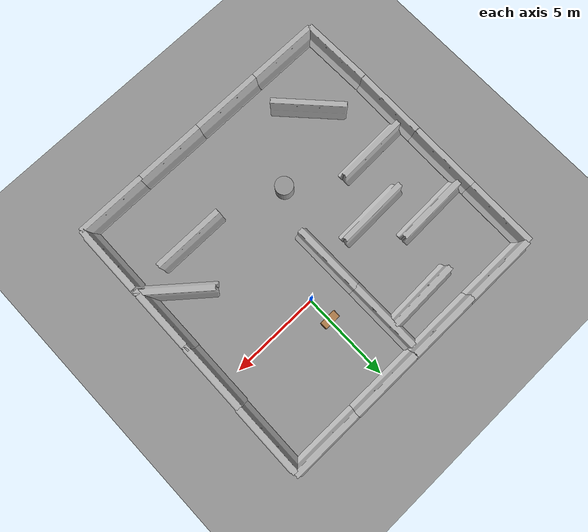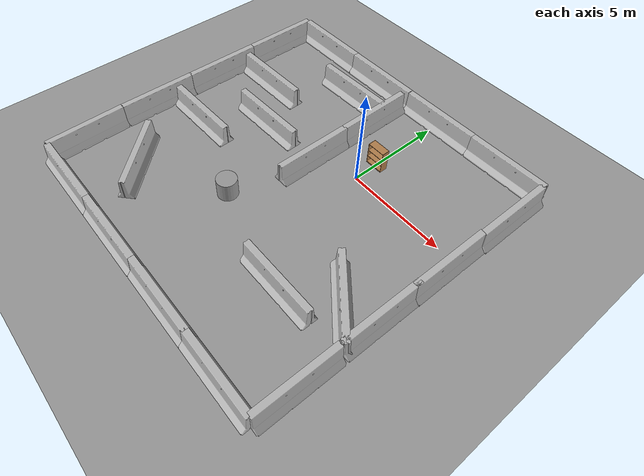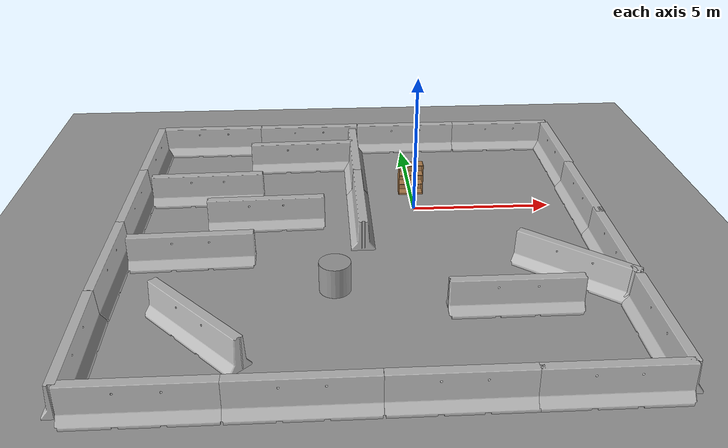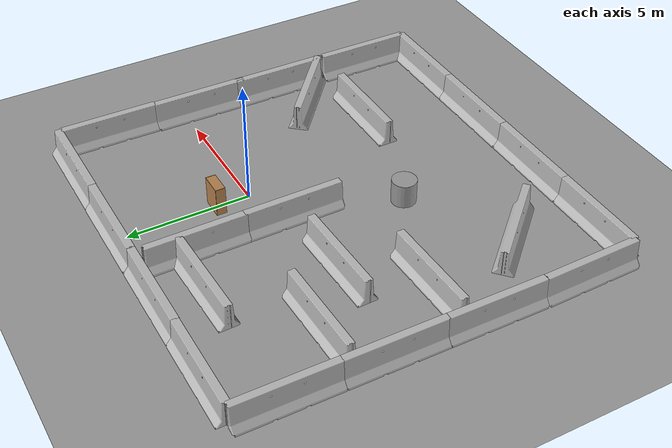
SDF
<sdf version="1.6">
 <world name="default">
  <light name="sun" type="directional">
   <pose>0 0 10 0 -0 0</pose>
   <diffuse>0.8 0.8 0.8 1</diffuse>
   <specular>0.2 0.2 0.2 1</specular>
   <attenuation>
    <range>1000</range>
    <constant>0.9</constant>
    <linear>0.01</linear>
    <quadratic>0.001</quadratic>
   </attenuation>
   <direction>0.5 0.1 -0.9</direction>
  </light>
  <scene><ambient>0.4 0.4 0.4 1</ambient><background>0.7 0.7 0.7 1</background><shadows>1</shadows></scene>
  <physics name="default_physics" default="0" type="ode">
   <max_step_size>0.01</max_step_size>
   <real_time_factor>1</real_time_factor>
   <real_time_update_rate>100</real_time_update_rate>
  </physics>
  <model name="bookshelf">
   <static>1</static>
   <link name="link">
    <inertial><mass>1</mass></inertial>
    <collision name="back">
     <pose>0 0.005 0.6 0 -0 0</pose>
     <geometry><box><size>0.9 0.01 1.2</size></box></geometry>
    </collision>
    <visual name="visual1">
     <pose>0 0.005 0.6 0 -0 0</pose>
     <geometry><box><size>0.9 0.01 1.2</size></box></geometry>
     <material>
      <script><uri>file://media/materials/scripts/gazebo.material</uri><name>Gazebo/Wood</name></script>
     </material>
    </visual>
    <collision name="left_side">
     <pose>0.45 -0.195 0.6 0 -0 0</pose>
     <geometry><box><size>0.02 0.4 1.2</size></box></geometry>
    </collision>
    <visual name="visual2">
     <pose>0.45 -0.195 0.6 0 -0 0</pose>
     <geometry><box><size>0.02 0.4 1.2</size></box></geometry>
     <material>
      <script><uri>file://media/materials/scripts/gazebo.material</uri><name>Gazebo/Wood</name></script>
     </material>
    </visual>
    <collision name="right_side">
     <pose>-0.45 -0.195 0.6 0 -0 0</pose>
     <geometry><box><size>0.02 0.4 1.2</size></box></geometry>
    </collision>
    <visual name="visual3">
     <pose>-0.45 -0.195 0.6 0 -0 0</pose>
     <geometry><box><size>0.02 0.4 1.2</size></box></geometry>
     <material>
      <script><uri>file://media/materials/scripts/gazebo.material</uri><name>Gazebo/Wood</name></script>
     </material>
    </visual>
    <collision name="bottom">
     <pose>0 -0.195 0.03 0 -0 0</pose>
     <geometry><box><size>0.88 0.4 0.06</size></box></geometry>
    </collision>
    <visual name="visual4">
     <pose>0 -0.195 0.03 0 -0 0</pose>
     <geometry><box><size>0.88 0.4 0.06</size></box></geometry>
     <material>
      <script><uri>file://media/materials/scripts/gazebo.material</uri><name>Gazebo/Wood</name></script>
     </material>
    </visual>
    <collision name="top">
     <pose>0 -0.195 1.19 0 -0 0</pose>
     <geometry><box><size>0.88 0.4 0.02</size></box></geometry>
    </collision>
    <visual name="visual5">
     <pose>0 -0.195 1.19 0 -0 0</pose>
     <geometry><box><size>0.88 0.4 0.02</size></box></geometry>
     <material>
      <script><uri>file://media/materials/scripts/gazebo.material</uri><name>Gazebo/Wood</name></script>
     </material>
    </visual>
    <collision name="low_shelf">
     <pose>0 -0.195 0.43 0 -0 0</pose>
     <geometry><box><size>0.88 0.4 0.02</size></box></geometry>
    </collision>
    <visual name="visual6">
     <pose>0 -0.195 0.43 0 -0 0</pose>
     <geometry><box><size>0.88 0.4 0.02</size></box></geometry>
     <material>
      <script><uri>file://media/materials/scripts/gazebo.material</uri><name>Gazebo/Wood</name></script>
     </material>
    </visual>
    <collision name="high_shelf">
     <pose>0 -0.195 0.8 0 -0 0</pose>
     <geometry><box><size>0.88 0.4 0.02</size></box></geometry>
    </collision>
    <visual name="visual7">
     <pose>0 -0.195 0.8 0 -0 0</pose>
     <geometry><box><size>0.88 0.4 0.02</size></box></geometry>
     <material>
      <script><uri>file://media/materials/scripts/gazebo.material</uri><name>Gazebo/Wood</name></script>
     </material>
    </visual>
    <velocity_decay><linear>0</linear><angular>0</angular></velocity_decay>
   </link>
   <pose>0 1.53026 0 0 -0 0</pose>
  </model>
  <model name="jersey_barrier">
   <static>1</static>
   <link name="link">
    <visual name="visual">
     <geometry>
      <mesh><uri>model://jersey_barrier/meshes/jersey_barrier.dae</uri><scale>1 1 1</scale></mesh>
     </geometry>
    </visual>
    <collision name="upright">
     <pose>0 0 0.5715 0 -0 0</pose>
     <geometry><box><size>4.06542 0.3063 1.143</size></box></geometry>
    </collision>
    <collision name="base">
     <pose>0 0 0.032258 0 -0 0</pose>
     <geometry><box><size>4.06542 0.8107 0.064516</size></box></geometry>
    </collision>
    <collision name="base2">
     <pose>0 0 0.1 0 -0 0</pose>
     <geometry><box><size>4.06542 0.65 0.1</size></box></geometry>
    </collision>
    <collision name="base3">
     <pose>0 0 0.2 0 -0 0</pose>
     <geometry><box><size>4.06542 0.5 0.1</size></box></geometry>
    </collision>
    <collision name="left-angle">
     <pose>0 -0.224 0.2401 0.9 -0 0</pose>
     <geometry><box><size>4.06542 0.5 0.064516</size></box></geometry>
    </collision>
    <collision name="right-angle">
     <pose>0 0.224 0.2401 -0.9 0 0</pose>
     <geometry><box><size>4.06542 0.5 0.064516</size></box></geometry>
    </collision>
    <velocity_decay><linear>0</linear><angular>0</angular></velocity_decay>
   </link>
   <pose>-5.32831 -1.03438 0 0 -0 0.025873</pose>
  </model>
  <model name="ground_plane_0">
   <static>1</static>
   <link name="link">
    <collision name="collision">
     <geometry><plane><normal>0 0 1</normal><size>100 100</size></plane></geometry>
     <surface><friction><ode><mu>100</mu><mu2>50</mu2></ode></friction></surface>
    </collision>
    <visual name="visual">
     <cast_shadows>0</cast_shadows>
     <geometry><plane><normal>0 0 1</normal><size>100 100</size></plane></geometry>
     <material>
      <script><uri>file://media/materials/scripts/gazebo.material</uri><name>Gazebo/Grey</name></script>
     </material>
    </visual>
    <velocity_decay><linear>0</linear><angular>0</angular></velocity_decay>
   </link>
   <pose>0.497681 0 0 0 -0 0</pose>
  </model>
  <model name="unit_cylinder_1">
   <pose>-3.03847 -5.14825 0.49912 0 0 -1e-06</pose>
   <link name="link">
    <inertial>
     <mass>1</mass>
     <inertia><ixx>1</ixx><ixy>0</ixy><ixz>0</ixz><iyy>1</iyy><iyz>0</iyz><izz>1</izz></inertia>
    </inertial>
    <collision name="collision">
     <geometry><cylinder><radius>0.5</radius><length>1</length></cylinder></geometry>
    </collision>
    <visual name="visual">
     <geometry><cylinder><radius>0.5</radius><length>1</length></cylinder></geometry>
     <material>
      <script><uri>file://media/materials/scripts/gazebo.material</uri><name>Gazebo/Grey</name></script>
     </material>
    </visual>
    <velocity_decay><linear>0</linear><angular>0</angular></velocity_decay>
   </link>
   <static>0</static>
  </model>
  <gravity>0 0 -9.8</gravity>
  <magnetic_field>6e-06 2.3e-05 -4.2e-05</magnetic_field>
  <atmosphere type="adiabatic"/>
  <spherical_coordinates>
   <surface_model>EARTH_WGS84</surface_model>
   <latitude_deg>0</latitude_deg>
   <longitude_deg>0</longitude_deg>
   <elevation>0</elevation>
   <heading_deg>0</heading_deg>
  </spherical_coordinates>
  <model name="jersey_barrier_0">
   <static>1</static>
   <link name="link">
    <visual name="visual">
     <geometry>
      <mesh><uri>model://jersey_barrier/meshes/jersey_barrier.dae</uri><scale>1 1 1</scale></mesh>
     </geometry>
    </visual>
    <collision name="upright">
     <pose>0 0 0.5715 0 -0 0</pose>
     <geometry><box><size>4.06542 0.3063 1.143</size></box></geometry>
    </collision>
    <collision name="base">
     <pose>0 0 0.032258 0 -0 0</pose>
     <geometry><box><size>4.06542 0.8107 0.064516</size></box></geometry>
    </collision>
    <collision name="base2">
     <pose>0 0 0.1 0 -0 0</pose>
     <geometry><box><size>4.06542 0.65 0.1</size></box></geometry>
    </collision>
    <collision name="base3">
     <pose>0 0 0.2 0 -0 0</pose>
     <geometry><box><size>4.06542 0.5 0.1</size></box></geometry>
    </collision>
    <collision name="left-angle">
     <pose>0 -0.224 0.2401 0.9 -0 0</pose>
     <geometry><box><size>4.06542 0.5 0.064516</size></box></geometry>
    </collision>
    <collision name="right-angle">
     <pose>0 0.224 0.2401 -0.9 0 0</pose>
     <geometry><box><size>4.06542 0.5 0.064516</size></box></geometry>
    </collision>
   </link>
   <pose>0.044913 -10.4917 0 0 -0 0</pose>
  </model>
  <model name="jersey_barrier_1">
   <static>1</static>
   <link name="link">
    <visual name="visual">
     <geometry>
      <mesh><uri>model://jersey_barrier/meshes/jersey_barrier.dae</uri><scale>1 1 1</scale></mesh>
     </geometry>
    </visual>
    <collision name="upright">
     <pose>0 0 0.5715 0 -0 0</pose>
     <geometry><box><size>4.06542 0.3063 1.143</size></box></geometry>
    </collision>
    <collision name="base">
     <pose>0 0 0.032258 0 -0 0</pose>
     <geometry><box><size>4.06542 0.8107 0.064516</size></box></geometry>
    </collision>
    <collision name="base2">
     <pose>0 0 0.1 0 -0 0</pose>
     <geometry><box><size>4.06542 0.65 0.1</size></box></geometry>
    </collision>
    <collision name="base3">
     <pose>0 0 0.2 0 -0 0</pose>
     <geometry><box><size>4.06542 0.5 0.1</size></box></geometry>
    </collision>
    <collision name="left-angle">
     <pose>0 -0.224 0.2401 0.9 -0 0</pose>
     <geometry><box><size>4.06542 0.5 0.064516</size></box></geometry>
    </collision>
    <collision name="right-angle">
     <pose>0 0.224 0.2401 -0.9 0 0</pose>
     <geometry><box><size>4.06542 0.5 0.064516</size></box></geometry>
    </collision>
   </link>
   <pose>3.93437 -10.4926 0 0 -0 0</pose>
  </model>
  <model name="jersey_barrier_1_clone_0">
   <static>1</static>
   <link name="link">
    <visual name="visual">
     <geometry>
      <mesh><uri>model://jersey_barrier/meshes/jersey_barrier.dae</uri><scale>1 1 1</scale></mesh>
     </geometry>
    </visual>
    <collision name="upright">
     <pose>0 0 0.5715 0 -0 0</pose>
     <geometry><box><size>4.06542 0.3063 1.143</size></box></geometry>
    </collision>
    <collision name="base">
     <pose>0 0 0.032258 0 -0 0</pose>
     <geometry><box><size>4.06542 0.8107 0.064516</size></box></geometry>
    </collision>
    <collision name="base2">
     <pose>0 0 0.1 0 -0 0</pose>
     <geometry><box><size>4.06542 0.65 0.1</size></box></geometry>
    </collision>
    <collision name="base3">
     <pose>0 0 0.2 0 -0 0</pose>
     <geometry><box><size>4.06542 0.5 0.1</size></box></geometry>
    </collision>
    <collision name="left-angle">
     <pose>0 -0.224 0.2401 0.9 -0 0</pose>
     <geometry><box><size>4.06542 0.5 0.064516</size></box></geometry>
    </collision>
    <collision name="right-angle">
     <pose>0 0.224 0.2401 -0.9 0 0</pose>
     <geometry><box><size>4.06542 0.5 0.064516</size></box></geometry>
    </collision>
   </link>
   <pose>-3.96775 -10.4974 0 0 -0 0</pose>
  </model>
  <model name="jersey_barrier_1_clone_1">
   <static>1</static>
   <link name="link">
    <visual name="visual">
     <geometry>
      <mesh><uri>model://jersey_barrier/meshes/jersey_barrier.dae</uri><scale>1 1 1</scale></mesh>
     </geometry>
    </visual>
    <collision name="upright">
     <pose>0 0 0.5715 0 -0 0</pose>
     <geometry><box><size>4.06542 0.3063 1.143</size></box></geometry>
    </collision>
    <collision name="base">
     <pose>0 0 0.032258 0 -0 0</pose>
     <geometry><box><size>4.06542 0.8107 0.064516</size></box></geometry>
    </collision>
    <collision name="base2">
     <pose>0 0 0.1 0 -0 0</pose>
     <geometry><box><size>4.06542 0.65 0.1</size></box></geometry>
    </collision>
    <collision name="base3">
     <pose>0 0 0.2 0 -0 0</pose>
     <geometry><box><size>4.06542 0.5 0.1</size></box></geometry>
    </collision>
    <collision name="left-angle">
     <pose>0 -0.224 0.2401 0.9 -0 0</pose>
     <geometry><box><size>4.06542 0.5 0.064516</size></box></geometry>
    </collision>
    <collision name="right-angle">
     <pose>0 0.224 0.2401 -0.9 0 0</pose>
     <geometry><box><size>4.06542 0.5 0.064516</size></box></geometry>
    </collision>
   </link>
   <pose>-7.97176 -10.4956 0 0 -0 0</pose>
  </model>
  <model name="jersey_barrier_1_clone_2">
   <static>1</static>
   <link name="link">
    <visual name="visual">
     <geometry>
      <mesh><uri>model://jersey_barrier/meshes/jersey_barrier.dae</uri><scale>1 1 1</scale></mesh>
     </geometry>
    </visual>
    <collision name="upright">
     <pose>0 0 0.5715 0 -0 0</pose>
     <geometry><box><size>4.06542 0.3063 1.143</size></box></geometry>
    </collision>
    <collision name="base">
     <pose>0 0 0.032258 0 -0 0</pose>
     <geometry><box><size>4.06542 0.8107 0.064516</size></box></geometry>
    </collision>
    <collision name="base2">
     <pose>0 0 0.1 0 -0 0</pose>
     <geometry><box><size>4.06542 0.65 0.1</size></box></geometry>
    </collision>
    <collision name="base3">
     <pose>0 0 0.2 0 -0 0</pose>
     <geometry><box><size>4.06542 0.5 0.1</size></box></geometry>
    </collision>
    <collision name="left-angle">
     <pose>0 -0.224 0.2401 0.9 -0 0</pose>
     <geometry><box><size>4.06542 0.5 0.064516</size></box></geometry>
    </collision>
    <collision name="right-angle">
     <pose>0 0.224 0.2401 -0.9 0 0</pose>
     <geometry><box><size>4.06542 0.5 0.064516</size></box></geometry>
    </collision>
   </link>
   <pose>-10.0738 -8.515 0 0 0 -1.55445</pose>
  </model>
  <model name="jersey_barrier_1_clone_2_clone">
   <static>1</static>
   <link name="link">
    <visual name="visual">
     <geometry>
      <mesh><uri>model://jersey_barrier/meshes/jersey_barrier.dae</uri><scale>1 1 1</scale></mesh>
     </geometry>
    </visual>
    <collision name="upright">
     <pose>0 0 0.5715 0 -0 0</pose>
     <geometry><box><size>4.06542 0.3063 1.143</size></box></geometry>
    </collision>
    <collision name="base">
     <pose>0 0 0.032258 0 -0 0</pose>
     <geometry><box><size>4.06542 0.8107 0.064516</size></box></geometry>
    </collision>
    <collision name="base2">
     <pose>0 0 0.1 0 -0 0</pose>
     <geometry><box><size>4.06542 0.65 0.1</size></box></geometry>
    </collision>
    <collision name="base3">
     <pose>0 0 0.2 0 -0 0</pose>
     <geometry><box><size>4.06542 0.5 0.1</size></box></geometry>
    </collision>
    <collision name="left-angle">
     <pose>0 -0.224 0.2401 0.9 -0 0</pose>
     <geometry><box><size>4.06542 0.5 0.064516</size></box></geometry>
    </collision>
    <collision name="right-angle">
     <pose>0 0.224 0.2401 -0.9 0 0</pose>
     <geometry><box><size>4.06542 0.5 0.064516</size></box></geometry>
    </collision>
   </link>
   <pose>-10.0721 -4.47903 0 0 0 -1.5814</pose>
  </model>
  <model name="jersey_barrier_1_clone_2_clone_0">
   <static>1</static>
   <link name="link">
    <visual name="visual">
     <geometry>
      <mesh><uri>model://jersey_barrier/meshes/jersey_barrier.dae</uri><scale>1 1 1</scale></mesh>
     </geometry>
    </visual>
    <collision name="upright">
     <pose>0 0 0.5715 0 -0 0</pose>
     <geometry><box><size>4.06542 0.3063 1.143</size></box></geometry>
    </collision>
    <collision name="base">
     <pose>0 0 0.032258 0 -0 0</pose>
     <geometry><box><size>4.06542 0.8107 0.064516</size></box></geometry>
    </collision>
    <collision name="base2">
     <pose>0 0 0.1 0 -0 0</pose>
     <geometry><box><size>4.06542 0.65 0.1</size></box></geometry>
    </collision>
    <collision name="base3">
     <pose>0 0 0.2 0 -0 0</pose>
     <geometry><box><size>4.06542 0.5 0.1</size></box></geometry>
    </collision>
    <collision name="left-angle">
     <pose>0 -0.224 0.2401 0.9 -0 0</pose>
     <geometry><box><size>4.06542 0.5 0.064516</size></box></geometry>
    </collision>
    <collision name="right-angle">
     <pose>0 0.224 0.2401 -0.9 0 0</pose>
     <geometry><box><size>4.06542 0.5 0.064516</size></box></geometry>
    </collision>
   </link>
   <pose>-10.0264 -0.525115 0 0 0 -1.5814</pose>
  </model>
  <model name="jersey_barrier_1_clone_2_clone_1">
   <static>1</static>
   <link name="link">
    <visual name="visual">
     <geometry>
      <mesh><uri>model://jersey_barrier/meshes/jersey_barrier.dae</uri><scale>1 1 1</scale></mesh>
     </geometry>
    </visual>
    <collision name="upright">
     <pose>0 0 0.5715 0 -0 0</pose>
     <geometry><box><size>4.06542 0.3063 1.143</size></box></geometry>
    </collision>
    <collision name="base">
     <pose>0 0 0.032258 0 -0 0</pose>
     <geometry><box><size>4.06542 0.8107 0.064516</size></box></geometry>
    </collision>
    <collision name="base2">
     <pose>0 0 0.1 0 -0 0</pose>
     <geometry><box><size>4.06542 0.65 0.1</size></box></geometry>
    </collision>
    <collision name="base3">
     <pose>0 0 0.2 0 -0 0</pose>
     <geometry><box><size>4.06542 0.5 0.1</size></box></geometry>
    </collision>
    <collision name="left-angle">
     <pose>0 -0.224 0.2401 0.9 -0 0</pose>
     <geometry><box><size>4.06542 0.5 0.064516</size></box></geometry>
    </collision>
    <collision name="right-angle">
     <pose>0 0.224 0.2401 -0.9 0 0</pose>
     <geometry><box><size>4.06542 0.5 0.064516</size></box></geometry>
    </collision>
   </link>
   <pose>-9.98287 3.46467 0 0 0 -1.5814</pose>
  </model>
  <model name="jersey_barrier_1_clone_1_clone">
   <static>1</static>
   <link name="link">
    <visual name="visual">
     <geometry>
      <mesh><uri>model://jersey_barrier/meshes/jersey_barrier.dae</uri><scale>1 1 1</scale></mesh>
     </geometry>
    </visual>
    <collision name="upright">
     <pose>0 0 0.5715 0 -0 0</pose>
     <geometry><box><size>4.06542 0.3063 1.143</size></box></geometry>
    </collision>
    <collision name="base">
     <pose>0 0 0.032258 0 -0 0</pose>
     <geometry><box><size>4.06542 0.8107 0.064516</size></box></geometry>
    </collision>
    <collision name="base2">
     <pose>0 0 0.1 0 -0 0</pose>
     <geometry><box><size>4.06542 0.65 0.1</size></box></geometry>
    </collision>
    <collision name="base3">
     <pose>0 0 0.2 0 -0 0</pose>
     <geometry><box><size>4.06542 0.5 0.1</size></box></geometry>
    </collision>
    <collision name="left-angle">
     <pose>0 -0.224 0.2401 0.9 -0 0</pose>
     <geometry><box><size>4.06542 0.5 0.064516</size></box></geometry>
    </collision>
    <collision name="right-angle">
     <pose>0 0.224 0.2401 -0.9 0 0</pose>
     <geometry><box><size>4.06542 0.5 0.064516</size></box></geometry>
    </collision>
   </link>
   <pose>-7.82894 5.43969 0 0 -0 0</pose>
  </model>
  <model name="jersey_barrier_1_clone_2_clone_3_clone_0">
   <static>1</static>
   <link name="link">
    <visual name="visual">
     <geometry>
      <mesh><uri>model://jersey_barrier/meshes/jersey_barrier.dae</uri><scale>1 1 1</scale></mesh>
     </geometry>
    </visual>
    <collision name="upright">
     <pose>0 0 0.5715 0 -0 0</pose>
     <geometry><box><size>4.06542 0.3063 1.143</size></box></geometry>
    </collision>
    <collision name="base">
     <pose>0 0 0.032258 0 -0 0</pose>
     <geometry><box><size>4.06542 0.8107 0.064516</size></box></geometry>
    </collision>
    <collision name="base2">
     <pose>0 0 0.1 0 -0 0</pose>
     <geometry><box><size>4.06542 0.65 0.1</size></box></geometry>
    </collision>
    <collision name="base3">
     <pose>0 0 0.2 0 -0 0</pose>
     <geometry><box><size>4.06542 0.5 0.1</size></box></geometry>
    </collision>
    <collision name="left-angle">
     <pose>0 -0.224 0.2401 0.9 -0 0</pose>
     <geometry><box><size>4.06542 0.5 0.064516</size></box></geometry>
    </collision>
    <collision name="right-angle">
     <pose>0 0.224 0.2401 -0.9 0 0</pose>
     <geometry><box><size>4.06542 0.5 0.064516</size></box></geometry>
    </collision>
   </link>
   <pose>5.9648 -4.34279 0 0 0 -1.5814</pose>
  </model>
  <model name="jersey_barrier_1_clone_2_clone_3_clone_1">
   <static>1</static>
   <link name="link">
    <visual name="visual">
     <geometry>
      <mesh><uri>model://jersey_barrier/meshes/jersey_barrier.dae</uri><scale>1 1 1</scale></mesh>
     </geometry>
    </visual>
    <collision name="upright">
     <pose>0 0 0.5715 0 -0 0</pose>
     <geometry><box><size>4.06542 0.3063 1.143</size></box></geometry>
    </collision>
    <collision name="base">
     <pose>0 0 0.032258 0 -0 0</pose>
     <geometry><box><size>4.06542 0.8107 0.064516</size></box></geometry>
    </collision>
    <collision name="base2">
     <pose>0 0 0.1 0 -0 0</pose>
     <geometry><box><size>4.06542 0.65 0.1</size></box></geometry>
    </collision>
    <collision name="base3">
     <pose>0 0 0.2 0 -0 0</pose>
     <geometry><box><size>4.06542 0.5 0.1</size></box></geometry>
    </collision>
    <collision name="left-angle">
     <pose>0 -0.224 0.2401 0.9 -0 0</pose>
     <geometry><box><size>4.06542 0.5 0.064516</size></box></geometry>
    </collision>
    <collision name="right-angle">
     <pose>0 0.224 0.2401 -0.9 0 0</pose>
     <geometry><box><size>4.06542 0.5 0.064516</size></box></geometry>
    </collision>
   </link>
   <pose>6.0186 -0.664457 0 0 0 -1.5814</pose>
  </model>
  <model name="jersey_barrier_1_clone_1_clone_clone_2_clone">
   <static>1</static>
   <link name="link">
    <visual name="visual">
     <geometry>
      <mesh><uri>model://jersey_barrier/meshes/jersey_barrier.dae</uri><scale>1 1 1</scale></mesh>
     </geometry>
    </visual>
    <collision name="upright">
     <pose>0 0 0.5715 0 -0 0</pose>
     <geometry><box><size>4.06542 0.3063 1.143</size></box></geometry>
    </collision>
    <collision name="base">
     <pose>0 0 0.032258 0 -0 0</pose>
     <geometry><box><size>4.06542 0.8107 0.064516</size></box></geometry>
    </collision>
    <collision name="base2">
     <pose>0 0 0.1 0 -0 0</pose>
     <geometry><box><size>4.06542 0.65 0.1</size></box></geometry>
    </collision>
    <collision name="base3">
     <pose>0 0 0.2 0 -0 0</pose>
     <geometry><box><size>4.06542 0.5 0.1</size></box></geometry>
    </collision>
    <collision name="left-angle">
     <pose>0 -0.224 0.2401 0.9 -0 0</pose>
     <geometry><box><size>4.06542 0.5 0.064516</size></box></geometry>
    </collision>
    <collision name="right-angle">
     <pose>0 0.224 0.2401 -0.9 0 0</pose>
     <geometry><box><size>4.06542 0.5 0.064516</size></box></geometry>
    </collision>
   </link>
   <pose>-7.02081 -7.46311 0 0 0 -0.819957</pose>
  </model>
  <model name="jersey_barrier_1_clone_1_clone_clone_2_clone_0">
   <static>1</static>
   <link name="link">
    <visual name="visual">
     <geometry>
      <mesh><uri>model://jersey_barrier/meshes/jersey_barrier.dae</uri><scale>1 1 1</scale></mesh>
     </geometry>
    </visual>
    <collision name="upright">
     <pose>0 0 0.5715 0 -0 0</pose>
     <geometry><box><size>4.06542 0.3063 1.143</size></box></geometry>
    </collision>
    <collision name="base">
     <pose>0 0 0.032258 0 -0 0</pose>
     <geometry><box><size>4.06542 0.8107 0.064516</size></box></geometry>
    </collision>
    <collision name="base2">
     <pose>0 0 0.1 0 -0 0</pose>
     <geometry><box><size>4.06542 0.65 0.1</size></box></geometry>
    </collision>
    <collision name="base3">
     <pose>0 0 0.2 0 -0 0</pose>
     <geometry><box><size>4.06542 0.5 0.1</size></box></geometry>
    </collision>
    <collision name="left-angle">
     <pose>0 -0.224 0.2401 0.9 -0 0</pose>
     <geometry><box><size>4.06542 0.5 0.064516</size></box></geometry>
    </collision>
    <collision name="right-angle">
     <pose>0 0.224 0.2401 -0.9 0 0</pose>
     <geometry><box><size>4.06542 0.5 0.064516</size></box></geometry>
    </collision>
   </link>
   <pose>2.31094 -6.49404 0 0 -0 0</pose>
  </model>
  <model name="jersey_barrier_clone">
   <static>1</static>
   <link name="link">
    <visual name="visual">
     <geometry>
      <mesh><uri>model://jersey_barrier/meshes/jersey_barrier.dae</uri><scale>1 1 1</scale></mesh>
     </geometry>
    </visual>
    <collision name="upright">
     <pose>0 0 0.5715 0 -0 0</pose>
     <geometry><box><size>4.06542 0.3063 1.143</size></box></geometry>
    </collision>
    <collision name="base">
     <pose>0 0 0.032258 0 -0 0</pose>
     <geometry><box><size>4.06542 0.8107 0.064516</size></box></geometry>
    </collision>
    <collision name="base2">
     <pose>0 0 0.1 0 -0 0</pose>
     <geometry><box><size>4.06542 0.65 0.1</size></box></geometry>
    </collision>
    <collision name="base3">
     <pose>0 0 0.2 0 -0 0</pose>
     <geometry><box><size>4.06542 0.5 0.1</size></box></geometry>
    </collision>
    <collision name="left-angle">
     <pose>0 -0.224 0.2401 0.9 -0 0</pose>
     <geometry><box><size>4.06542 0.5 0.064516</size></box></geometry>
    </collision>
    <collision name="right-angle">
     <pose>0 0.224 0.2401 -0.9 0 0</pose>
     <geometry><box><size>4.06542 0.5 0.064516</size></box></geometry>
    </collision>
    <velocity_decay><linear>0</linear><angular>0</angular></velocity_decay>
   </link>
   <pose>-7.5787 0.950125 0 0 -0 0.021917</pose>
  </model>
  <model name="jersey_barrier_1_clone_1_clone_clone_2_clone_0_clone_0">
   <static>1</static>
   <link name="link">
    <visual name="visual">
     <geometry>
      <mesh><uri>model://jersey_barrier/meshes/jersey_barrier.dae</uri><scale>1 1 1</scale></mesh>
     </geometry>
    </visual>
    <collision name="upright">
     <pose>0 0 0.5715 0 -0 0</pose>
     <geometry><box><size>4.06542 0.3063 1.143</size></box></geometry>
    </collision>
    <collision name="base">
     <pose>0 0 0.032258 0 -0 0</pose>
     <geometry><box><size>4.06542 0.8107 0.064516</size></box></geometry>
    </collision>
    <collision name="base2">
     <pose>0 0 0.1 0 -0 0</pose>
     <geometry><box><size>4.06542 0.65 0.1</size></box></geometry>
    </collision>
    <collision name="base3">
     <pose>0 0 0.2 0 -0 0</pose>
     <geometry><box><size>4.06542 0.5 0.1</size></box></geometry>
    </collision>
    <collision name="left-angle">
     <pose>0 -0.224 0.2401 0.9 -0 0</pose>
     <geometry><box><size>4.06542 0.5 0.064516</size></box></geometry>
    </collision>
    <collision name="right-angle">
     <pose>0 0.224 0.2401 -0.9 0 0</pose>
     <geometry><box><size>4.06542 0.5 0.064516</size></box></geometry>
    </collision>
   </link>
   <pose>4.20657 5.41196 0 0 -0 0</pose>
  </model>
  <model name="jersey_barrier_1_clone_1_clone_clone_2_clone_0_clone_1">
   <static>1</static>
   <link name="link">
    <visual name="visual">
     <geometry>
      <mesh><uri>model://jersey_barrier/meshes/jersey_barrier.dae</uri><scale>1 1 1</scale></mesh>
     </geometry>
    </visual>
    <collision name="upright">
     <pose>0 0 0.5715 0 -0 0</pose>
     <geometry><box><size>4.06542 0.3063 1.143</size></box></geometry>
    </collision>
    <collision name="base">
     <pose>0 0 0.032258 0 -0 0</pose>
     <geometry><box><size>4.06542 0.8107 0.064516</size></box></geometry>
    </collision>
    <collision name="base2">
     <pose>0 0 0.1 0 -0 0</pose>
     <geometry><box><size>4.06542 0.65 0.1</size></box></geometry>
    </collision>
    <collision name="base3">
     <pose>0 0 0.2 0 -0 0</pose>
     <geometry><box><size>4.06542 0.5 0.1</size></box></geometry>
    </collision>
    <collision name="left-angle">
     <pose>0 -0.224 0.2401 0.9 -0 0</pose>
     <geometry><box><size>4.06542 0.5 0.064516</size></box></geometry>
    </collision>
    <collision name="right-angle">
     <pose>0 0.224 0.2401 -0.9 0 0</pose>
     <geometry><box><size>4.06542 0.5 0.064516</size></box></geometry>
    </collision>
   </link>
   <pose>-3.85367 5.42903 0 0 -0 0</pose>
  </model>
  <model name="jersey_barrier_1_clone_1_clone_clone_2_clone_0_clone_2">
   <static>1</static>
   <link name="link">
    <visual name="visual">
     <geometry>
      <mesh><uri>model://jersey_barrier/meshes/jersey_barrier.dae</uri><scale>1 1 1</scale></mesh>
     </geometry>
    </visual>
    <collision name="upright">
     <pose>0 0 0.5715 0 -0 0</pose>
     <geometry><box><size>4.06542 0.3063 1.143</size></box></geometry>
    </collision>
    <collision name="base">
     <pose>0 0 0.032258 0 -0 0</pose>
     <geometry><box><size>4.06542 0.8107 0.064516</size></box></geometry>
    </collision>
    <collision name="base2">
     <pose>0 0 0.1 0 -0 0</pose>
     <geometry><box><size>4.06542 0.65 0.1</size></box></geometry>
    </collision>
    <collision name="base3">
     <pose>0 0 0.2 0 -0 0</pose>
     <geometry><box><size>4.06542 0.5 0.1</size></box></geometry>
    </collision>
    <collision name="left-angle">
     <pose>0 -0.224 0.2401 0.9 -0 0</pose>
     <geometry><box><size>4.06542 0.5 0.064516</size></box></geometry>
    </collision>
    <collision name="right-angle">
     <pose>0 0.224 0.2401 -0.9 0 0</pose>
     <geometry><box><size>4.06542 0.5 0.064516</size></box></geometry>
    </collision>
   </link>
   <pose>0.204823 5.4248 0 0 -0 0</pose>
  </model>
  <model name="jersey_barrier_1_clone_2_clone_2_clone">
   <static>1</static>
   <link name="link">
    <visual name="visual">
     <geometry>
      <mesh><uri>model://jersey_barrier/meshes/jersey_barrier.dae</uri><scale>1 1 1</scale></mesh>
     </geometry>
    </visual>
    <collision name="upright">
     <pose>0 0 0.5715 0 -0 0</pose>
     <geometry><box><size>4.06542 0.3063 1.143</size></box></geometry>
    </collision>
    <collision name="base">
     <pose>0 0 0.032258 0 -0 0</pose>
     <geometry><box><size>4.06542 0.8107 0.064516</size></box></geometry>
    </collision>
    <collision name="base2">
     <pose>0 0 0.1 0 -0 0</pose>
     <geometry><box><size>4.06542 0.65 0.1</size></box></geometry>
    </collision>
    <collision name="base3">
     <pose>0 0 0.2 0 -0 0</pose>
     <geometry><box><size>4.06542 0.5 0.1</size></box></geometry>
    </collision>
    <collision name="left-angle">
     <pose>0 -0.224 0.2401 0.9 -0 0</pose>
     <geometry><box><size>4.06542 0.5 0.064516</size></box></geometry>
    </collision>
    <collision name="right-angle">
     <pose>0 0.224 0.2401 -0.9 0 0</pose>
     <geometry><box><size>4.06542 0.5 0.064516</size></box></geometry>
    </collision>
   </link>
   <pose>6.10803 3.31897 0 0 0 -1.5814</pose>
  </model>
  <model name="jersey_barrier_1_clone_2_clone_2_clone_0">
   <static>1</static>
   <link name="link">
    <visual name="visual">
     <geometry>
      <mesh><uri>model://jersey_barrier/meshes/jersey_barrier.dae</uri><scale>1 1 1</scale></mesh>
     </geometry>
    </visual>
    <collision name="upright">
     <pose>0 0 0.5715 0 -0 0</pose>
     <geometry><box><size>4.06542 0.3063 1.143</size></box></geometry>
    </collision>
    <collision name="base">
     <pose>0 0 0.032258 0 -0 0</pose>
     <geometry><box><size>4.06542 0.8107 0.064516</size></box></geometry>
    </collision>
    <collision name="base2">
     <pose>0 0 0.1 0 -0 0</pose>
     <geometry><box><size>4.06542 0.65 0.1</size></box></geometry>
    </collision>
    <collision name="base3">
     <pose>0 0 0.2 0 -0 0</pose>
     <geometry><box><size>4.06542 0.5 0.1</size></box></geometry>
    </collision>
    <collision name="left-angle">
     <pose>0 -0.224 0.2401 0.9 -0 0</pose>
     <geometry><box><size>4.06542 0.5 0.064516</size></box></geometry>
    </collision>
    <collision name="right-angle">
     <pose>0 0.224 0.2401 -0.9 0 0</pose>
     <geometry><box><size>4.06542 0.5 0.064516</size></box></geometry>
    </collision>
   </link>
   <pose>5.9329 -8.48199 0 0 0 -1.5814</pose>
  </model>
  <model name="jersey_barrier_clone_clone">
   <static>1</static>
   <link name="link">
    <visual name="visual">
     <geometry>
      <mesh><uri>model://jersey_barrier/meshes/jersey_barrier.dae</uri><scale>1 1 1</scale></mesh>
     </geometry>
    </visual>
    <collision name="upright">
     <pose>0 0 0.5715 0 -0 0</pose>
     <geometry><box><size>4.06542 0.3063 1.143</size></box></geometry>
    </collision>
    <collision name="base">
     <pose>0 0 0.032258 0 -0 0</pose>
     <geometry><box><size>4.06542 0.8107 0.064516</size></box></geometry>
    </collision>
    <collision name="base2">
     <pose>0 0 0.1 0 -0 0</pose>
     <geometry><box><size>4.06542 0.65 0.1</size></box></geometry>
    </collision>
    <collision name="base3">
     <pose>0 0 0.2 0 -0 0</pose>
     <geometry><box><size>4.06542 0.5 0.1</size></box></geometry>
    </collision>
    <collision name="left-angle">
     <pose>0 -0.224 0.2401 0.9 -0 0</pose>
     <geometry><box><size>4.06542 0.5 0.064516</size></box></geometry>
    </collision>
    <collision name="right-angle">
     <pose>0 0.224 0.2401 -0.9 0 0</pose>
     <geometry><box><size>4.06542 0.5 0.064516</size></box></geometry>
    </collision>
    <velocity_decay><linear>0</linear><angular>0</angular></velocity_decay>
   </link>
   <pose>4.51855 -5.00567 0 0 0 -0.7</pose>
  </model>
  <model name="jersey_barrier_clone_0">
   <static>1</static>
   <link name="link">
    <visual name="visual">
     <geometry>
      <mesh><uri>model://jersey_barrier/meshes/jersey_barrier.dae</uri><scale>1 1 1</scale></mesh>
     </geometry>
    </visual>
    <collision name="upright">
     <pose>0 0 0.5715 0 -0 0</pose>
     <geometry><box><size>4.06542 0.3063 1.143</size></box></geometry>
    </collision>
    <collision name="base">
     <pose>0 0 0.032258 0 -0 0</pose>
     <geometry><box><size>4.06542 0.8107 0.064516</size></box></geometry>
    </collision>
    <collision name="base2">
     <pose>0 0 0.1 0 -0 0</pose>
     <geometry><box><size>4.06542 0.65 0.1</size></box></geometry>
    </collision>
    <collision name="base3">
     <pose>0 0 0.2 0 -0 0</pose>
     <geometry><box><size>4.06542 0.5 0.1</size></box></geometry>
    </collision>
    <collision name="left-angle">
     <pose>0 -0.224 0.2401 0.9 -0 0</pose>
     <geometry><box><size>4.06542 0.5 0.064516</size></box></geometry>
    </collision>
    <collision name="right-angle">
     <pose>0 0.224 0.2401 -0.9 0 0</pose>
     <geometry><box><size>4.06542 0.5 0.064516</size></box></geometry>
    </collision>
    <velocity_decay><linear>0</linear><angular>0</angular></velocity_decay>
   </link>
   <pose>-7.6263 -3.42826 0 0 -0 0.025873</pose>
  </model>
  <model name="jersey_barrier_clone_1">
   <static>1</static>
   <link name="link">
    <visual name="visual">
     <geometry>
      <mesh><uri>model://jersey_barrier/meshes/jersey_barrier.dae</uri><scale>1 1 1</scale></mesh>
     </geometry>
    </visual>
    <collision name="upright">
     <pose>0 0 0.5715 0 -0 0</pose>
     <geometry><box><size>4.06542 0.3063 1.143</size></box></geometry>
    </collision>
    <collision name="base">
     <pose>0 0 0.032258 0 -0 0</pose>
     <geometry><box><size>4.06542 0.8107 0.064516</size></box></geometry>
    </collision>
    <collision name="base2">
     <pose>0 0 0.1 0 -0 0</pose>
     <geometry><box><size>4.06542 0.65 0.1</size></box></geometry>
    </collision>
    <collision name="base3">
     <pose>0 0 0.2 0 -0 0</pose>
     <geometry><box><size>4.06542 0.5 0.1</size></box></geometry>
    </collision>
    <collision name="left-angle">
     <pose>0 -0.224 0.2401 0.9 -0 0</pose>
     <geometry><box><size>4.06542 0.5 0.064516</size></box></geometry>
    </collision>
    <collision name="right-angle">
     <pose>0 0.224 0.2401 -0.9 0 0</pose>
     <geometry><box><size>4.06542 0.5 0.064516</size></box></geometry>
    </collision>
    <velocity_decay><linear>0</linear><angular>0</angular></velocity_decay>
   </link>
   <pose>-4.11447 3.68356 0 0 -0 0.025873</pose>
  </model>
  <model name="jersey_barrier_1_clone_1_clone_clone_2_clone_clone">
   <static>1</static>
   <link name="link">
    <visual name="visual">
     <geometry>
      <mesh><uri>model://jersey_barrier/meshes/jersey_barrier.dae</uri><scale>1 1 1</scale></mesh>
     </geometry>
    </visual>
    <collision name="upright">
     <pose>0 0 0.5715 0 -0 0</pose>
     <geometry><box><size>4.06542 0.3063 1.143</size></box></geometry>
    </collision>
    <collision name="base">
     <pose>0 0 0.032258 0 -0 0</pose>
     <geometry><box><size>4.06542 0.8107 0.064516</size></box></geometry>
    </collision>
    <collision name="base2">
     <pose>0 0 0.1 0 -0 0</pose>
     <geometry><box><size>4.06542 0.65 0.1</size></box></geometry>
    </collision>
    <collision name="base3">
     <pose>0 0 0.2 0 -0 0</pose>
     <geometry><box><size>4.06542 0.5 0.1</size></box></geometry>
    </collision>
    <collision name="left-angle">
     <pose>0 -0.224 0.2401 0.9 -0 0</pose>
     <geometry><box><size>4.06542 0.5 0.064516</size></box></geometry>
    </collision>
    <collision name="right-angle">
     <pose>0 0.224 0.2401 -0.9 0 0</pose>
     <geometry><box><size>4.06542 0.5 0.064516</size></box></geometry>
    </collision>
   </link>
   <pose>-2.04876 3.04016 0 0 0 -1.56872</pose>
  </model>
  <model name="jersey_barrier_1_clone_1_clone_clone_2_clone_clone_clone">
   <static>1</static>
   <link name="link">
    <visual name="visual">
     <geometry>
      <mesh><uri>model://jersey_barrier/meshes/jersey_barrier.dae</uri><scale>1 1 1</scale></mesh>
     </geometry>
    </visual>
    <collision name="upright">
     <pose>0 0 0.5715 0 -0 0</pose>
     <geometry><box><size>4.06542 0.3063 1.143</size></box></geometry>
    </collision>
    <collision name="base">
     <pose>0 0 0.032258 0 -0 0</pose>
     <geometry><box><size>4.06542 0.8107 0.064516</size></box></geometry>
    </collision>
    <collision name="base2">
     <pose>0 0 0.1 0 -0 0</pose>
     <geometry><box><size>4.06542 0.65 0.1</size></box></geometry>
    </collision>
    <collision name="base3">
     <pose>0 0 0.2 0 -0 0</pose>
     <geometry><box><size>4.06542 0.5 0.1</size></box></geometry>
    </collision>
    <collision name="left-angle">
     <pose>0 -0.224 0.2401 0.9 -0 0</pose>
     <geometry><box><size>4.06542 0.5 0.064516</size></box></geometry>
    </collision>
    <collision name="right-angle">
     <pose>0 0.224 0.2401 -0.9 0 0</pose>
     <geometry><box><size>4.06542 0.5 0.064516</size></box></geometry>
    </collision>
   </link>
   <pose>-2.03624 -0.894889 0 0 0 -1.56872</pose>
  </model>
 </world>
</sdf>
